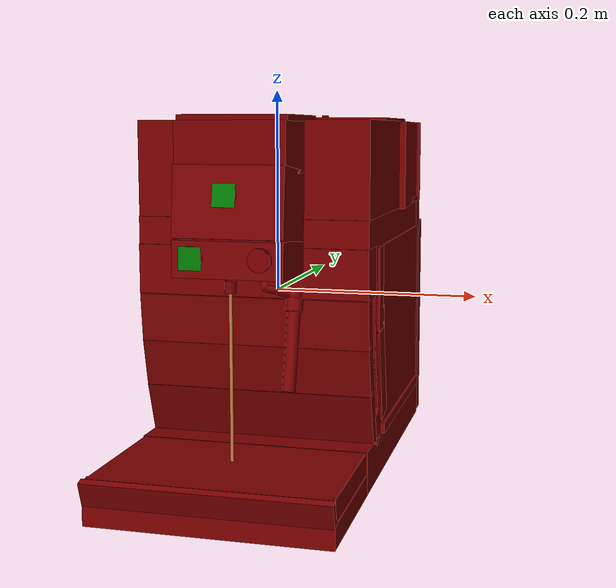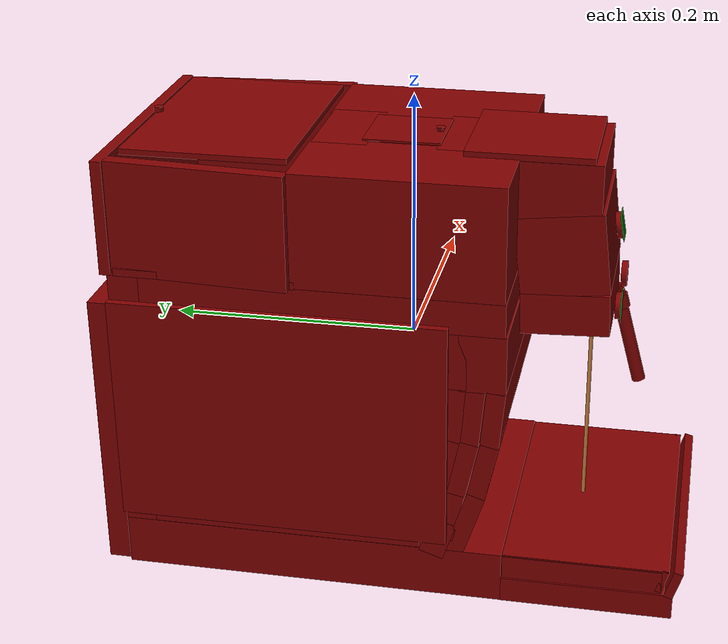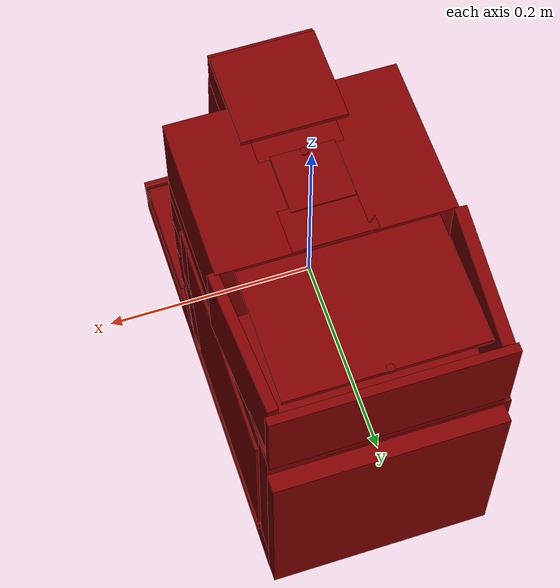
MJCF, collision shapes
<?xml version='1.0' encoding='UTF-8'?>
<mujoco model="model">
  <option timestep="0.002" gravity="0.0 0.0 -9.81"/>
  <compiler angle="radian"/>
  <asset>
    <mesh file="visuals/Body001.obj" name="Body001_vis"/>
    <mesh file="visuals/Button001.obj" name="Button001_vis"/>
    <mesh file="visuals/Button002.obj" name="Button002_vis"/>
    <mesh file="visuals/Button003.obj" name="Button003_vis"/>
    <mesh file="visuals/Container001_Clear.obj" name="Container001_Clear_vis"/>
    <mesh file="visuals/Lever001.obj" name="Lever001_vis"/>
    <mesh file="visuals/Lid001.obj" name="Lid001_vis"/>
    <mesh file="visuals/Lid002.obj" name="Lid002_vis"/>
    <mesh file="visuals/Lid003.obj" name="Lid003_vis"/>
    <texture file="visuals/T_BC001.png" name="Body001_material" type="2d"/>
    <material name="Body001_material" rgba="1 1 1 1.0" texture="Body001_material" shininess="-0.1" specular="2"/>
    <texture file="visuals/T_BC001.png" name="Button001_material" type="2d"/>
    <material name="Button001_material" rgba="1 1 1 1.0" texture="Button001_material" shininess="-0.1" specular="2"/>
    <texture file="visuals/T_BC001.png" name="Button002_material" type="2d"/>
    <material name="Button002_material" rgba="1 1 1 1.0" texture="Button002_material" shininess="-0.1" specular="2"/>
    <texture file="visuals/T_BC001.png" name="Button003_material" type="2d"/>
    <material name="Button003_material" rgba="1 1 1 1.0" texture="Button003_material" shininess="-0.1" specular="2"/>
    <material name="Container001_Clear_material" rgba="0.5 0.5 0.5 0.10000000149011612" shininess="-0.1" specular="0.3103448502657381"/>
    <texture file="visuals/T_BC001.png" name="Lever001_material" type="2d"/>
    <material name="Lever001_material" rgba="1 1 1 1.0" texture="Lever001_material" shininess="-0.1" specular="2"/>
    <texture file="visuals/T_BC001.png" name="Lid001_material" type="2d"/>
    <material name="Lid001_material" rgba="1 1 1 1.0" texture="Lid001_material" shininess="-0.1" specular="2"/>
    <texture file="visuals/T_BC001.png" name="Lid002_material" type="2d"/>
    <material name="Lid002_material" rgba="1 1 1 1.0" texture="Lid002_material" shininess="-0.1" specular="2"/>
    <texture file="visuals/T_BC001.png" name="Lid003_material" type="2d"/>
    <material name="Lid003_material" rgba="1 1 1 1.0" texture="Lid003_material" shininess="-0.1" specular="2"/>
  </asset>
  <default>
    <default class="visual">
      <geom conaffinity="0" contype="0" group="1" type="mesh"/>
    </default>
    <default class="collision">
      <geom group="0" rgba="0.5 0 0 0.5"/>
    </default>
    <default class="spawn">
      <geom group="0" rgba="1 1 1 0.5" contype="0" conaffinity="0"/>
      <site group="0" rgba="1 1 1 0.5"/>
    </default>
    <default class="region">
      <geom group="1" conaffinity="0" contype="0" rgba="0 1 0 0"/>
    </default>
  </default>
  <worldbody>
    <body>
      <body name="object">
        <geom class="collision" type="box" pos="-0.00124559 -0.16493319 0.10540237" size="0.010432046838104725 0.010432046838104725 0.00023479762603528798" quat="0.7657781839370728 0.6431047916412354 0.0 0.0" name="start_button_1" rgba="0.0 0.5 0 0.5"/>
        <geom class="collision" type="box" pos="-0.03165734 -0.16878255 0.05037468" size="0.010432046838104725 0.00023871820303611457 0.010432046838104725" quat="1.0 0.0 0.0 0.0" name="start_button_2" rgba="0.0 0.5 0 0.5"/>
        <geom mesh="Body001_vis" type="mesh" solimp="0.998 0.998 0.001" solref="0.001 1" friction="0.95 0.3 0.1" class="visual" material="Body001_material"/>
        <geom class="collision" type="box" pos="-0.00000000 0.06312108 -0.15725248" size="0.11195165663957596 0.15366652607917786 0.020686009898781776" quat="1.0 0.0 0.0 0.0"/>
        <geom class="collision" type="box" pos="-0.00000000 -0.15732262 -0.16783005" size="0.11194931715726852 0.06829290091991425 0.010334211401641369" quat="1.0 0.0 0.0 0.0"/>
        <geom class="collision" type="box" pos="-0.00000000 -0.22556078 -0.14791322" size="0.11195165663957596 0.011879979632794857 0.0036422957200556993" quat="0.8053767085075378 -0.5927633047103882 -1.316199202782537e-16 -6.994547234390643e-24"/>
        <geom class="collision" type="box" pos="-0.00000000 0.20468479 -0.02874508" size="0.11195165663957596 0.012152980081737041 0.10867776721715927" quat="1.0 0.0 0.0 0.0"/>
        <geom class="collision" type="box" pos="0.00200903 0.08386704 -0.13102606" size="0.11396069079637527 0.10867775976657867 0.005318571347743273" quat="1.0 0.0 0.0 0.0"/>
        <geom class="collision" type="box" pos="0.00000000 0.05154718 0.06618332" size="0.11195165663957596 0.14099763333797455 0.013451976701617241" quat="1.0 0.0 0.0 0.0"/>
        <geom class="collision" type="box" pos="0.00000000 -0.07261194 0.02959609" size="0.11195165663957596 0.0183626189827919 0.023557720705866814" quat="1.0 0.0 0.0 0.0"/>
        <geom class="collision" type="box" pos="-0.00000000 -0.08129348 -0.01741900" size="0.11195165663957596 0.02345963940024376 0.007367161102592945" quat="0.7399609088897705 -0.6726498603820801 -1.4895644801217288e-16 4.444539141957276e-19"/>
        <geom class="collision" type="box" pos="0.00000000 -0.07434868 -0.06290860" size="0.11195165663957596 0.02345964126288891 0.007367161102592945" quat="0.7782642841339111 -0.627936840057373 -1.3905500343568453e-16 4.673307831080121e-19"/>
        <geom class="collision" type="box" pos="-0.00000000 -0.06076238 -0.11258774" size="0.11195165663957596 0.02864706702530384 0.007367161102592945" quat="0.8100221753120422 -0.586399257183075 -1.2985674178920506e-16 4.862973624696053e-19"/>
        <geom class="collision" type="box" pos="-0.00000000 -0.03955568 -0.12624059" size="0.11195165663957596 0.01639576442539692 0.010064381174743176" quat="0.812647819519043 -0.5827551484107971 -1.2904978408826773e-16 4.878807929571849e-19"/>
        <geom class="collision" type="box" pos="-0.03069810 0.08528562 -0.03427409" size="0.08770895004272461 0.13229043781757355 0.09314877539873123" quat="1.0 0.0 0.0 0.0"/>
        <geom class="collision" type="box" pos="-0.02647818 -0.06568921 -0.01656785" size="0.08547347784042358 0.02345963940024376 0.007367161102592945" quat="0.7399609088897705 -0.6726498603820801 -1.4895644801217288e-16 4.444539141957276e-19"/>
        <geom class="collision" type="box" pos="-0.02647818 -0.05874441 -0.06205746" size="0.08547347784042358 0.02345964126288891 0.007367161102592945" quat="0.7782642841339111 -0.627936840057373 -1.3905500343568453e-16 4.673307831080121e-19"/>
        <geom class="collision" type="box" pos="-0.02647818 -0.04948430 -0.10284135" size="0.08547347784042358 0.02345964126288891 0.007367161102592945" quat="0.7782642841339111 -0.627936840057373 -1.3905500343568453e-16 4.673307831080121e-19"/>
        <geom class="collision" type="box" pos="-0.02647818 -0.05150350 -0.01518869" size="0.08547347784042358 0.02345963940024376 0.007367161102592945" quat="0.7399609088897705 -0.6726498603820801 -1.4895644801217288e-16 4.444539141957276e-19"/>
        <geom class="collision" type="box" pos="-0.02647818 -0.04455870 -0.06067829" size="0.08547347784042358 0.02345964126288891 0.007367161102592945" quat="0.7782642841339111 -0.627936840057373 -1.3905500343568453e-16 4.673307831080121e-19"/>
        <geom class="collision" type="box" pos="-0.02647818 -0.05320579 0.03043254" size="0.08547347784042358 0.02345963940024376 0.007367160636931658" quat="0.7027764320373535 -0.7114107608795166 -1.3989560422649562e-16 1.6461407041785034e-17"/>
        <geom class="collision" type="box" pos="0.07145903 -0.00744638 0.11744830" size="0.040491294115781784 0.08122146129608154 0.052932869642972946" quat="1.0 0.0 0.0 0.0"/>
        <geom class="collision" type="box" pos="0.00000000 -0.09589675 0.17173259" size="0.05102944374084473 0.04928381368517876 0.0028701561968773603" quat="1.0 0.0 0.0 0.0"/>
        <geom class="collision" type="box" pos="-0.00035770 -0.11892272 0.14599654" size="0.051004067063331604 0.03275555744767189 0.02363540045917034" quat="1.0 0.0 0.0 0.0"/>
        <geom class="collision" type="box" pos="-0.00035770 -0.12323713 0.09538749" size="0.051004067063331604 0.032320212572813034 0.03457696735858917" quat="0.6663897633552551 -0.7456035614013672 -1.484139631141259e-16 1.7188495491496695e-17"/>
        <geom class="collision" type="box" pos="-0.00035770 -0.12688938 0.04737138" size="0.051004067063331604 0.01664959453046322 0.034529104828834534" quat="0.6930869817733765 -0.7208539843559265 -1.5432706041423877e-16 5.7490686254145216e-18"/>
        <geom class="collision" type="cylinder" pos="-0.00226319 -0.14478752 0.02306658" size="0.005195016972720623 0.0056921616196632385" quat="1.0 0.0 0.0 0.0"/>
        <geom class="collision" type="box" pos="-0.00000000 0.22612965 -0.06005920" size="0.11195118725299835 0.008782172575592995 0.11500222235918045" quat="1.0 0.0 0.0 0.0"/>
        <geom class="collision" type="box" pos="-0.07153250 -0.00744638 0.11744830" size="0.040340181440114975 0.0812220573425293 0.052933283150196075" quat="1.0 0.0 0.0 0.0"/>
        <geom class="collision" type="box" pos="0.00134664 0.05108090 0.11744830" size="0.040340203791856766 0.02157868817448616 0.05293331295251846" quat="1.0 0.0 0.0 0.0"/>
        <geom class="collision" type="box" pos="0.00134664 -0.04549785 0.11744830" size="0.04034022241830826 0.021578697487711906 0.05293333902955055" quat="1.0 0.0 0.0 0.0"/>
        <geom class="collision" type="box" pos="0.00000000 0.00300127 0.15243676" size="0.02961600571870804 0.02676309645175934 0.003558612195774913" quat="1.0 0.0 0.0 0.0"/>
        <geom class="collision" type="box" pos="-0.00012960 0.21829988 0.12446262" size="0.11182994395494461 0.0043168626725673676 0.04551542177796364" quat="1.0 0.0 0.0 0.0"/>
        <geom class="collision" type="box" pos="-0.10832668 0.14374593 0.12446262" size="0.005925577599555254 0.07020445168018341 0.04551549628376961" quat="0.9993990063667297 0.0 -0.0 -0.034664370119571686"/>
        <geom class="collision" type="box" pos="0.10840483 0.14053614 0.12446262" size="0.005043792072683573 0.07020445168018341 0.04551549628376961" quat="0.9993990063667297 0.0 0.0 0.03466436639428139"/>
        <geom class="collision" type="box" pos="-0.00012960 0.14104941 0.08196507" size="0.11183001101016998 0.0707031786441803 0.003017946146428585" quat="1.0 0.0 0.0 0.0"/>
        <body name="Button001">
          <joint axis="0.0 1.0 0.0" pos="0.03129099 -0.16479285 0.05037481" limited="true" name="Button001_joint" range="0.0 0.0025" type="slide" damping="1" frictionloss="1" armature=".01" stiffness="0.05" springref="-5"/>
          <geom mesh="Button001_vis" type="mesh" solimp="0.998 0.998 0.001" solref="0.001 1" friction="0.95 0.3 0.1" class="visual" material="Button001_material"/>
          <geom class="collision" type="cylinder" pos="0.03131602 -0.16681343 0.05037468" size="0.010432046838104725 0.0023561641573905945" quat="0.7071067094802856 0.7071068286895752 0.0 0.0"/>
        </body>
        <body name="Button002">
          <joint axis="0.0 1.0 0.0" pos="-0.03166272 -0.16467367 0.05027713" limited="true" name="Button002_joint" range="0.0 0.0025" type="slide" damping="1" frictionloss="1" armature=".01" stiffness="0.05" springref="-5"/>
          <geom mesh="Button002_vis" type="mesh" solimp="0.998 0.998 0.001" solref="0.001 1" friction="0.95 0.3 0.1" class="visual" material="Button002_material"/>
          <geom class="collision" type="cylinder" pos="-0.03165734 -0.16622196 0.05037468" size="0.010432046838104725 0.00196964293718338" quat="0.7071067094802856 0.7071068286895752 0.0 0.0"/>
        </body>
        <body name="Button003">
          <joint axis="0.0 0.9853023290634155 -0.17081961035728455" pos="-0.00100410 -0.16081756 0.10449706" limited="true" name="Button003_joint" range="0.0 0.0025" type="slide" damping="1" frictionloss="1" armature=".01" stiffness="0.05" springref="-5"/>
          <geom mesh="Button003_vis" type="mesh" solimp="0.998 0.998 0.001" solref="0.001 1" friction="0.95 0.3 0.1" class="visual" material="Button003_material"/>
          <geom class="collision" type="cylinder" pos="-0.00124559 -0.16244118 0.10496509" size="0.010432046838104725 0.0019674296490848064" quat="0.7657781839370728 0.6431047916412354 0.0 0.0"/>
        </body>
        <body name="Container001_Clear">
          <geom mesh="Container001_Clear_vis" type="mesh" solimp="0.998 0.998 0.001" solref="0.001 1" friction="0.95 0.3 0.1" class="visual" material="Container001_Clear_material"/>
          <geom class="collision" type="box" pos="0.06747180 0.08172545 -0.03490606" size="0.0012893963139504194 0.10880737751722336 0.08657684922218323" quat="1.0 0.0 0.0 0.0"/>
          <geom class="collision" type="box" pos="0.11297145 0.08113438 -0.03610009" size="0.0012893963139504194 0.10880719125270844 0.08777087926864624" quat="1.0 0.0 0.0 0.0"/>
          <geom class="collision" type="box" pos="0.08838917 0.18962118 -0.03490606" size="0.021932460367679596 0.0012893973616883159 0.08657684922218323" quat="1.0 0.0 0.0 0.0"/>
          <geom class="collision" type="box" pos="0.11297145 -0.03566129 0.01097213" size="0.0012893963139504194 0.012768151238560677 0.040536943823099136" quat="1.0 0.0 0.0 0.0"/>
          <geom class="collision" type="box" pos="0.11297145 -0.02768000 -0.06522002" size="0.0012893963139504194 0.012768151238560677 0.040536943823099136" quat="0.9948450922966003 0.10140614956617355 2.2516686763028417e-17 9.573317164694347e-25"/>
          <geom class="collision" type="box" pos="0.06711939 -0.03566129 0.01197042" size="0.0012893963139504194 0.012768151238560677 0.040536943823099136" quat="1.0 0.0 0.0 0.0"/>
          <geom class="collision" type="box" pos="0.06711939 -0.02608761 -0.07294995" size="0.0012893963139504194 0.012768151238560677 0.04842919856309891" quat="0.9948450922966003 0.10140614956617355 2.2516686763028417e-17 9.573317164694347e-25"/>
          <geom class="collision" type="box" pos="0.11297145 -0.02621131 -0.07234945" size="0.0012893963139504194 0.012768151238560677 0.04781608283519745" quat="0.9948450922966003 0.10140614956617355 2.2516686763028417e-17 9.573317164694347e-25"/>
          <geom class="collision" type="box" pos="0.08838917 -0.05134052 0.02380571" size="0.021932460367679596 0.0010894195875152946 0.028150122612714767" quat="1.0 0.0 0.0 0.0"/>
          <geom class="collision" type="box" pos="0.08838917 -0.04631644 -0.03546367" size="0.0010894185397773981 0.021932460367679596 0.03273638337850571" quat="0.7053433060646057 0.04990704730153084 0.04990704357624054 -0.70534348487854"/>
          <geom class="collision" type="box" pos="0.08838917 -0.03537068 -0.08991884" size="0.0010894185397773981 0.021932460367679596 0.03273638337850571" quat="0.701687216758728 0.08737853169441223 0.08737853914499283 -0.7016872763633728"/>
          <geom class="collision" type="box" pos="0.08939569 0.08124294 -0.12197870" size="0.020589197054505348 0.1095348373055458 0.0003066382196266204" quat="1.0 0.0 0.0 0.0"/>
          <geom class="collision" type="box" pos="0.07804937 0.13068095 -0.07602878" size="0.0091010220348835 0.018342208117246628 0.04625656083226204" quat="1.0 0.0 0.0 0.0"/>
          <geom class="collision" type="box" pos="0.07766443 -0.05587247 -0.03966841" size="0.0012893963139504194 0.012768150307238102 0.03808744251728058" quat="0.9969019889831543 0.07865401357412338 1.7464712604724077e-17 -5.921095291280288e-24"/>
          <geom class="collision" type="box" pos="0.07766443 -0.06116562 -0.00001498" size="0.0012893963139504194 0.010859214700758457 0.003424856113269925" quat="0.9990853071212769 0.04276217520236969 9.495108644183923e-18 -1.11250742100867e-23"/>
          <geom class="collision" type="box" pos="0.07766443 -0.04779420 -0.08828053" size="0.0012893963139504194 0.010859215632081032 0.01135159656405449" quat="0.9964436888694763 0.08426135778427124 1.8709778245293994e-17 -1.156451154392278e-23"/>
          <geom class="collision" type="box" pos="0.07766443 -0.04173798 -0.10248831" size="0.0012893963139504194 0.010859215632081032 0.0034083090722560883" quat="0.9999037981033325 -0.01387268677353859 -3.080352979132399e-18 -6.412931921884769e-24"/>
          <geom class="collision" type="box" pos="0.07766443 -0.04173798 -0.09925515" size="0.0012893963139504194 0.010859215632081032 0.0034083090722560883" quat="0.9999037981033325 -0.01387268677353859 -3.080352979132399e-18 -6.412931921884769e-24"/>
          <geom class="collision" type="box" pos="0.09122528 -0.05941088 0.00293078" size="0.015479560010135174 0.007000826299190521 0.0013459947658702731" quat="1.0 0.0 0.0 0.0"/>
          <geom class="collision" type="box" pos="0.09122528 -0.05941088 0.00293078" size="0.015479560010135174 0.007000826299190521 0.0013459931360557675" quat="1.0 0.0 0.0 0.0"/>
          <geom class="collision" type="box" pos="0.09122528 -0.06944578 -0.00059747" size="0.0012893963139504194 0.005344013683497906 0.0154795590788126" quat="0.6386833190917969 0.3034527599811554 0.6386833786964417 0.3034527599811554"/>
          <geom class="collision" type="box" pos="0.09122528 -0.07155579 -0.02005999" size="0.0012893963139504194 0.015372076071798801 0.0154795590788126" quat="0.4742617607116699 0.5244766473770142 0.4742617905139923 0.5244766473770142"/>
          <geom class="collision" type="box" pos="0.09122528 -0.06693700 -0.05034611" size="0.0012893963139504194 0.015372076071798801 0.0154795590788126" quat="0.4516051411628723 0.5441073179244995 0.4516051709651947 0.5441073179244995"/>
          <geom class="collision" type="box" pos="0.09122528 -0.06072432 -0.08000612" size="0.0012893963139504194 0.015372078865766525 0.0154795590788126" quat="0.4372918903827667 0.5556758642196655 0.4372921884059906 0.5556758642196655"/>
          <geom class="collision" type="box" pos="0.09122528 -0.04059955 -0.10540951" size="0.015479445457458496 0.0096397390589118 0.0013706699246540666" quat="1.0 0.0 0.0 0.0"/>
          <geom class="collision" type="box" pos="0.09122529 -0.05487658 -0.09834196" size="0.001289396546781063 0.00748261995613575 0.0154795590788126" quat="0.37345433235168457 0.6004418730735779 0.3734580874443054 0.6004418730735779"/>
        </body>
        <body name="Lever001">
          <joint axis="0.0 0.0 1.0" pos="0.02511166 -0.13981327 0.03404039" limited="true" name="Lever001_joint" range="0.0 1.0471975511965976" type="hinge" damping="1" frictionloss="1" armature=".01" stiffness="0.01" springref="-0.01"/>
          <geom mesh="Lever001_vis" type="mesh" solimp="0.998 0.998 0.001" solref="0.001 1" friction="0.95 0.3 0.1" class="visual" material="Lever001_material"/>
          <geom class="collision" type="cylinder" pos="0.02848408 -0.14202023 0.02460318" size="0.003279789350926876 0.003593653440475464" quat="0.31129348278045654 -0.35401102900505066 0.0707671195268631 0.8790702819824219"/>
          <geom class="collision" type="cylinder" pos="0.03880131 -0.14789039 0.02248377" size="0.003279789350926876 0.008309883996844292" quat="0.42010000348091125 -0.7000372409820557 -0.05817507952451706 0.5745254755020142"/>
          <geom class="collision" type="cylinder" pos="0.05225787 -0.15593562 0.02242677" size="0.004313711076974869 0.008277508430182934" quat="0.42010000348091125 -0.7000372409820557 -0.05817507952451706 0.5745254755020142"/>
          <geom class="collision" type="cylinder" pos="0.06137380 -0.17102972 -0.01621588" size="0.0056446935050189495 0.04409264773130417" quat="0.5790894627571106 -0.07702662795782089 0.10727851092815399 0.8044958710670471"/>
          <geom class="collision" type="cylinder" pos="0.06138318 -0.16317971 0.01272061" size="0.007267702370882034 0.005794093478471041" quat="0.5790894627571106 -0.07702662795782089 0.10727851092815399 0.8044958710670471"/>
        </body>
        <body name="Lid001">
          <geom mesh="Lid001_vis" type="mesh" solimp="0.998 0.998 0.001" solref="0.001 1" friction="0.95 0.3 0.1" class="visual" material="Lid001_material"/>
          <geom class="collision" type="box" pos="-0.11014700 -0.15378317 -0.14743953" size="0.000713276385795325 0.06260634958744049 0.009638052433729172" quat="1.0 0.0 0.0 0.0"/>
          <geom class="collision" type="box" pos="0.10979776 -0.15378317 -0.14743953" size="0.0007132759201340377 0.0626063123345375 0.009638046845793724" quat="1.0 0.0 0.0 0.0"/>
          <geom class="collision" type="box" pos="0.00007139 -0.15643242 -0.13744508" size="0.1103711649775505 0.06525538861751556 0.0007132954779081047" quat="1.0 0.0 0.0 0.0"/>
          <geom class="collision" type="box" pos="-0.11014700 -0.21671472 -0.14609839" size="0.0007132748141884804 0.0024728174321353436 0.009638032875955105" quat="0.9899290204048157 0.14156463742256165 -3.1433663987848e-17 -5.754917402860503e-24"/>
          <geom class="collision" type="box" pos="0.10977748 -0.21671472 -0.14609839" size="0.0007132748141884804 0.0024728174321353436 0.009638032875955105" quat="0.9899290204048157 0.14156463742256165 -3.1433663987848e-17 -5.754917402860503e-24"/>
        </body>
        <body name="Lid002">
          <joint axis="-1.0 0.0 0.0" pos="0.00000000 0.03464422 0.17133443" limited="true" name="Lid002_joint" range="0.0 1.5707963267948966" type="hinge" damping="1" frictionloss="1" armature=".01" stiffness="0.05"/>
          <geom mesh="Lid002_vis" type="mesh" solimp="0.998 0.998 0.001" solref="0.001 1" friction="0.95 0.3 0.1" class="visual" material="Lid002_material"/>
          <geom class="collision" type="cylinder" pos="-0.00007254 -0.02065807 0.17296940" size="0.0028926830273121595 0.000971427361946553" quat="1.0 0.0 0.0 0.0"/>
          <geom class="collision" type="cylinder" pos="-0.00007254 -0.02065807 0.17462751" size="0.003775096731260419 0.0007055872702039778" quat="1.0 0.0 0.0 0.0"/>
          <geom class="collision" type="box" pos="0.00000000 0.00427841 0.17128793" size="0.030378278344869614 0.030378278344869614 0.0007464580121450126" quat="1.0 0.0 0.0 0.0"/>
        </body>
        <body name="Lid003">
          <joint axis="1.0 0.0 0.0" pos="0.00255463 0.07548355 0.17015095" limited="true" name="Lid003_joint" range="0.0 1.5707963267948966" type="hinge" damping="1" frictionloss="1" armature=".01" stiffness="0.05"/>
          <geom mesh="Lid003_vis" type="mesh" solimp="0.998 0.998 0.001" solref="0.001 1" friction="0.95 0.3 0.1" class="visual" material="Lid003_material"/>
          <geom class="collision" type="box" pos="0.00163938 0.14268361 0.17189818" size="0.09382521361112595 0.06474097818136215 0.002249283716082573" quat="1.0 0.0 0.0 0.0"/>
          <geom class="collision" type="cylinder" pos="-0.00007254 0.20651057 0.17596717" size="0.003775096731260419 0.0020452539902180433" quat="1.0 0.0 0.0 0.0"/>
        </body>
        <site rgba="0 0 0 0" size="0.009999999776482582 0.009999999776482582" pos="-0.00228661 -0.16514937 -0.13649668" name="receptacle_place_site"/>
        <site type="cylinder" rgba="0.8 0.5 0.25 1" size="0.0015930539229884744 0.08924613147974014" pos="-0.00213293 -0.14492139 -0.06885117" name="coffee_liquid"/>
        <geom class="region" name="reg_main" type="box" pos="0.0 0.0 -0.0012149999999999939" size="0.11916649 0.23422913 0.17763556"/>
      </body>
    </body>
  </worldbody>
  <actuator>
    <motor name="Button001_joint_actuator" joint="Button001_joint" gear="0.5"/>
    <motor name="Button002_joint_actuator" joint="Button002_joint" gear="0.5"/>
    <motor name="Button003_joint_actuator" joint="Button003_joint" gear="0.5"/>
    <motor name="Lever001_joint_actuator" joint="Lever001_joint" gear="10"/>
    <motor name="Lid002_joint_actuator" joint="Lid002_joint" gear="10"/>
    <motor name="Lid003_joint_actuator" joint="Lid003_joint" gear="10"/>
  </actuator>
</mujoco>
